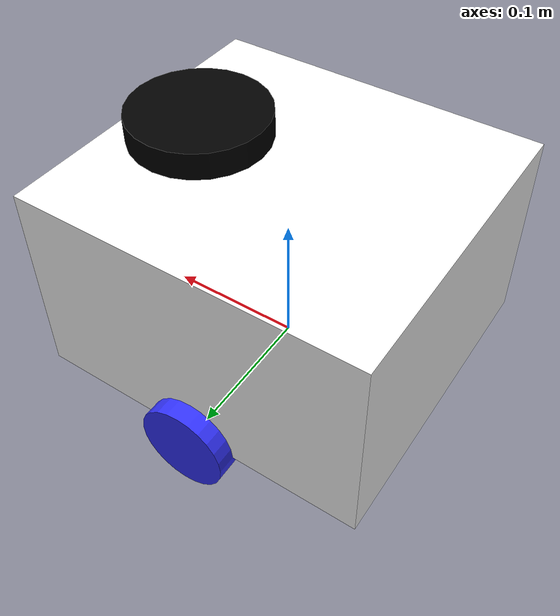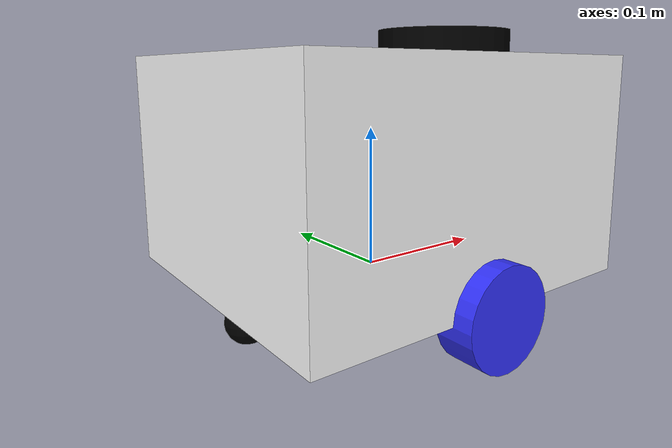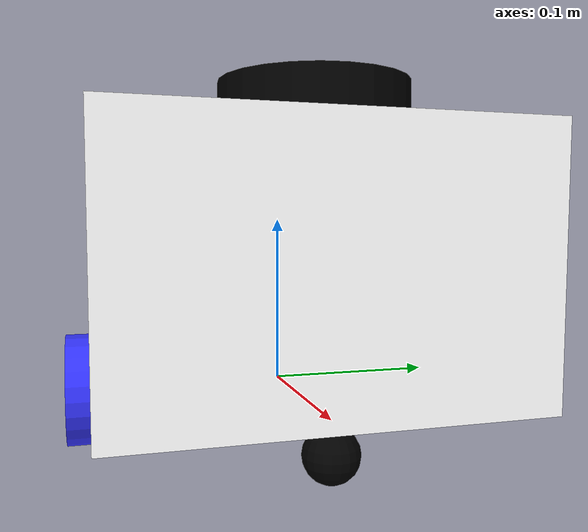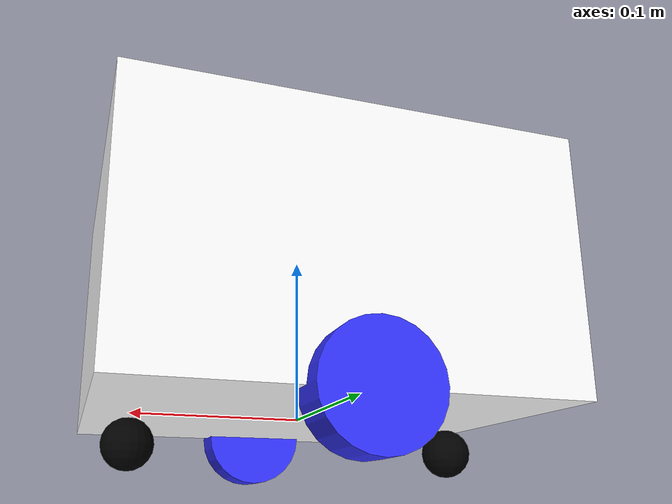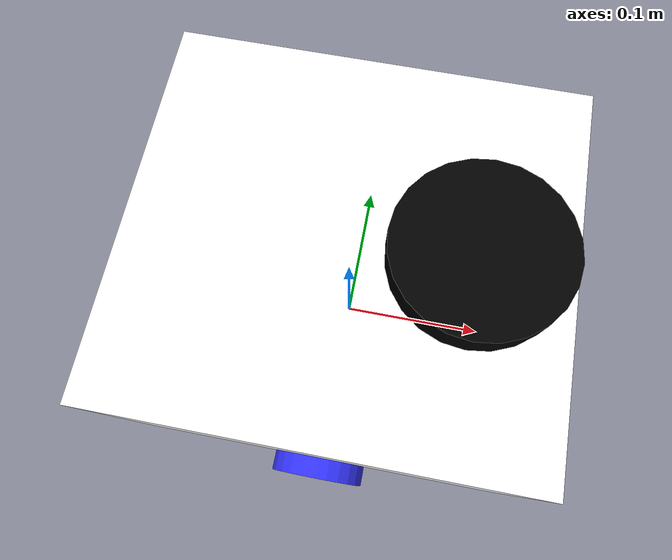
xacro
<?xml version="1.0"?>
<robot xmlns:xacro="http://www.ros.org/wiki/xacro"  name="robot">

    <xacro:arg name="Su_Dung_ros2_control" default="true"/>

    <xacro:include filename="cauhinh_robot.xacro" />
    <xacro:include filename="gazebo_control.xacro" />
    <xacro:include filename="lidar.xacro" />

    <xacro:if value="$(arg Su_Dung_ros2_control)">
        <xacro:include filename="ros2_control.xacro" />
    </xacro:if>

    <xacro:unless value="$(arg Su_Dung_ros2_control)">
        <xacro:include filename="gazebo_control.xacro" />
    </xacro:unless>

</robot>

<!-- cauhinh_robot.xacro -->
<robot xmlns:xacro="http://www.ros.org/wiki/xacro" name="robot">

    <xacro:include filename="quan_tinh_macros.xacro"/>

    <xacro:property name="dai" value="0.25"/>
    <xacro:property name="rong" value="0.23"/>
    <xacro:property name="cao" value="0.15"/>
    <xacro:property name="KhoiLuongKhung" value="1.0"/>

    <xacro:property name="do_rong_banh_xe" value="0.027"/>
    <xacro:property name="ban_kinh_banh_xe" value="0.0325"/>
    <xacro:property name="khoi_luong_banh_xe" value="0.1"/>

    <xacro:property name="BK_BDH" value="0.015"/>
    <xacro:property name="KL_BDH" value="0.1"/>

    <material name="white"><color rgba="1 1 1 1"/></material>
    <material name="orange"><color rgba="1 0.3 0.1 1"/></material>
    <material name="blue"><color rgba="0.2 0.2 1 1"/></material>
    <material name="black"><color rgba="0 0 0 1"/></material>
    <material name="red"><color rgba="1 0 0 1"/></material>

    <link name="base_link"></link>

    <joint name="base_footprint_joint" type="fixed">
        <parent link="base_link"/>
        <child link="base_footprint"/>
        <origin xyz="0 0 0" rpy="0 0 0"/>
    </joint>

    <link name="base_footprint">
    </link>

    <joint name="khung_joint" type="fixed">
        <parent link="base_link"/>
        <child link="khung"/>
        <origin xyz="${-dai/2} 0 0"/>
    </joint>

    <link name="khung">
        <visual>
            <origin xyz="${dai/2} 0 ${cao/2}"/>
            <geometry>
                <box size="${dai} ${rong} ${cao}"/>
            </geometry>
            <material name="white"/>
        </visual>
        <collision>
            <origin xyz="${dai/2} 0 ${cao/2}"/>
            <geometry>
                <box size="${dai} ${rong} ${cao}"/>
            </geometry>
        </collision>
            <xacro:quan_tinh_hinh_hop mass="${KhoiLuongKhung}" x="${dai}" y="${rong}" z="${cao}">
            <origin xyz="${dai/2} 0 ${cao/2}" rpy="0 0 0"/>
        </xacro:quan_tinh_hinh_hop>

    </link>
    <gazebo reference="khung">
        <material>Gazebo/White</material>
    </gazebo>

    <joint name="Banh_trai_joint" type="continuous">
        <parent link="base_link"/>
        <child link="Banh_trai"/>
        <origin xyz="0 ${rong/2} 0" rpy="-${pi/2} 0 0" />
        <axis xyz="0 0 1"/>
    </joint>

    <link name="Banh_trai">
        <visual>
            <geometry>
                <cylinder radius="${ban_kinh_banh_xe}" length="${do_rong_banh_xe}"/>
            </geometry>
            <material name="blue"/>
        </visual>
        <collision>
            <geometry>
                <cylinder radius="${ban_kinh_banh_xe}" length="${do_rong_banh_xe}"/>
            </geometry>
        </collision>
        <xacro:quan_tinh_hinh_tru mass="${khoi_luong_banh_xe}" length="${do_rong_banh_xe}" radius="${ban_kinh_banh_xe}">
            <origin xyz="0 0 0" rpy="0 0 0"/>
        </xacro:quan_tinh_hinh_tru>
    </link>
    <gazebo reference="Banh_trai">
        <material>Gazebo/Blue</material>
    </gazebo>

    <joint name="Banh_phai_joint" type="continuous">
        <parent link="base_link"/>
        <child link="Banh_phai"/>
        <origin xyz="0 -${rong/2} 0" rpy="${pi/2} 0 0" />
        <axis xyz="0 0 -1"/>
    </joint>

    <link name="Banh_phai">
        <visual>
            <geometry>
                <cylinder radius="${ban_kinh_banh_xe}" length="${do_rong_banh_xe}"/>
            </geometry>
            <material name="blue"/>
        </visual>
        <collision>
            <geometry>
                <cylinder radius="${ban_kinh_banh_xe}" length="${do_rong_banh_xe}"/>
            </geometry>
        </collision>
        <xacro:quan_tinh_hinh_tru mass="${khoi_luong_banh_xe}" length="${do_rong_banh_xe}" radius="${ban_kinh_banh_xe}">
            <origin xyz="0 0 0" rpy="0 0 0"/>
        </xacro:quan_tinh_hinh_tru>
    </link>
    <gazebo reference="Banh_phai">
        <material>Gazebo/Blue</material>
    </gazebo>

    <joint name="BDH_trc_joint" type="fixed">
        <parent link="base_link"/>
        <child link="BDH_trc"/>
        <origin xyz="0.1 0 -0.0175"/>
    </joint>

    <link name="BDH_trc">
        <visual>
            <geometry>
                <sphere radius="${BK_BDH}"/>
            </geometry>
            <material name="black"/>
        </visual>
        <collision>
            <geometry>
                <sphere radius="${BK_BDH}"/>
            </geometry>
            <material name="black"/>
        </collision>
        <xacro:quan_tinh_hinh_cau mass="${KL_BDH}" radius="${BK_BDH}">
            <origin xyz="0 0 0" rpy="0 0 0"/>
        </xacro:quan_tinh_hinh_cau>
    </link>
    <gazebo reference="BDH_trc">
        <material>Gazebo/Black</material>
        <mu1 value="0.001"/>
        <mu2 value="0.001"/>
    </gazebo>

    <joint name="BDH_sau_joint" type="fixed">
        <parent link="base_link"/>
        <child link="BDH_sau"/>
        <origin xyz="-0.1 0 -0.0175"/>
    </joint>

    <link name="BDH_sau">
        <visual>
            <geometry>
                <sphere radius="${BK_BDH}"/>
            </geometry>
            <material name="black"/>
        </visual>
        <collision>
            <geometry>
                <sphere radius="${BK_BDH}"/>
            </geometry>
            <material name="black"/>
        </collision>
        <xacro:quan_tinh_hinh_cau mass="${KL_BDH}" radius="${BK_BDH}">
            <origin xyz="0 0 0" rpy="0 0 0"/>
        </xacro:quan_tinh_hinh_cau>
    </link>
    <gazebo reference="BDH_sau">
        <material>Gazebo/Black</material>
        <mu1 value="0.001"/>
        <mu2 value="0.001"/>
    </gazebo>

</robot>

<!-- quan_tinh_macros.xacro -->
<robot xmlns:xacro="http://www.ros.org/wiki/xacro" >

    <!-- Đây là file quản tính -->

    <!-- Quán tính hình cầu -->
    <xacro:macro name="quan_tinh_hinh_cau" params="mass radius *origin">
        <inertial>
            <xacro:insert_block name="origin"/>
            <mass value="${mass}" />
            <inertia ixx="${(2/5) * float(mass) * (float(radius)*float(radius))}" ixy="0.0" ixz="0.0"
                     iyy="${(2/5) * float(mass) * (float(radius)*float(radius))}" iyz="0.0"
                     izz="${(2/5) * float(mass) * (float(radius)*float(radius))}" />
        </inertial>
    </xacro:macro>

    <!-- Quán tính hình hộp -->
    <xacro:macro name="quan_tinh_hinh_hop" params="mass x y z *origin">
        <inertial>
            <xacro:insert_block name="origin"/>
            <mass value="${mass}" />
            <inertia ixx="${(1/12) * float(mass) * (float(y)*float(y) + float(z)*float(z))}" ixy="0.0" ixz="0.0"
                     iyy="${(1/12) * float(mass) * (float(x)*float(x) + float(z)*float(z))}" iyz="0.0"
                     izz="${(1/12) * float(mass) * (float(x)*float(x) + float(y)*float(y))}" />
        </inertial>
    </xacro:macro>

    <!-- Quán tính hình trụ -->
    <xacro:macro name="quan_tinh_hinh_tru" params="mass length radius *origin">
        <inertial>
            <xacro:insert_block name="origin"/>
            <mass value="${mass}" />
            <inertia ixx="${(1/12) * float(mass) * (3*float(radius)*float(radius) + float(length)*float(length))}" ixy="0.0" ixz="0.0"
                     iyy="${(1/12) * float(mass) * (3*float(radius)*float(radius) + float(length)*float(length))}" iyz="0.0"
                     izz="${(1/2) * float(mass) * (float(radius)*float(radius))}" />
        </inertial>
    </xacro:macro>

</robot>

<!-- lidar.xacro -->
<robot xmlns:xacro="http://www.ros.org/wiki/xacro" >

    <joint name="laser_joint" type="fixed">
        <parent link="base_link"/>
        <child link="laser_frame"/>
        <origin xyz="0.07 0 0.15" rpy="0 0 0"/>
    </joint>

    <link name="laser_frame">
        <visual>
            <geometry>
                <cylinder radius="0.05" length="0.04"/>
            </geometry>
            <material name="black"/>
        </visual>
        <collision>
            <geometry>
                <cylinder radius="0.05" length="0.04"/>
            </geometry>
        </collision>
        <xacro:quan_tinh_hinh_tru mass="0.1" length="0.04" radius="0.05">
            <origin xyz="0 0 0" rpy="0 0 0"/>
        </xacro:quan_tinh_hinh_tru>
    </link>

        <!-- NHO BAT TAT MO PHONG LIDAR true false-->

     <gazebo reference="laser_frame">
        <material>Gazebo/Black</material>

        <sensor name="laser" type="ray">
            <pose> 0 0 0 0 0 0 </pose>
            <visualize>true</visualize>
            <update_rate>10</update_rate>
            <ray>
                <scan>
                    <horizontal>
                        <samples>360</samples>
                        <min_angle>-3.14</min_angle>
                        <max_angle>3.14</max_angle>
                    </horizontal>
                </scan>
                <range>
                    <min>0.3</min>
                    <max>12</max>
                </range>
            </ray>
            <plugin name="laser_controller" filename="libgazebo_ros_ray_sensor.so">
                <ros>
                    <argument>~/out:=scan</argument>
                </ros>
                <output_type>sensor_msgs/LaserScan</output_type>
                <frame_name>laser_frame</frame_name>
            </plugin>
        </sensor>
    </gazebo>

</robot>
